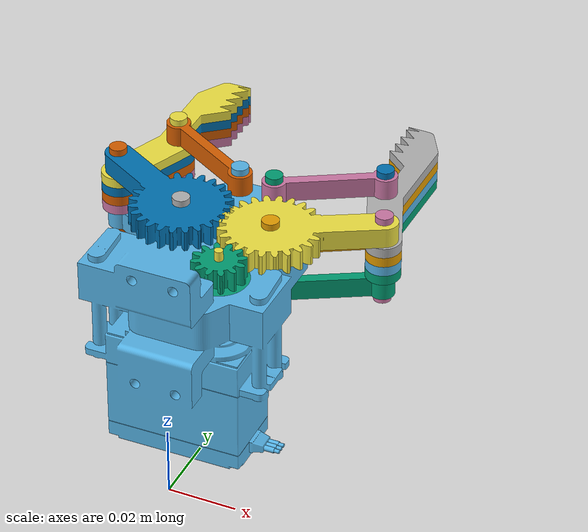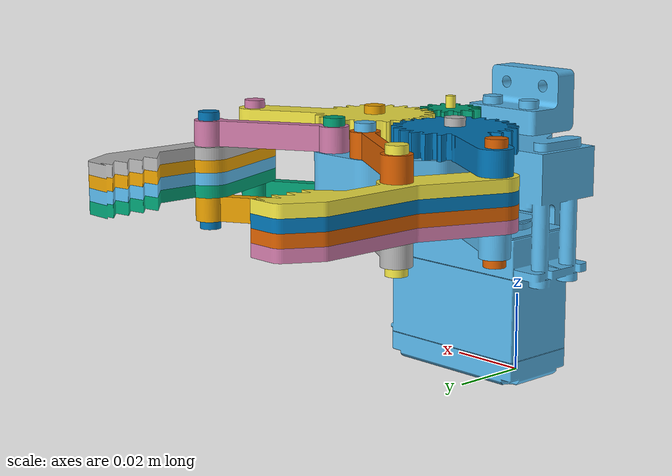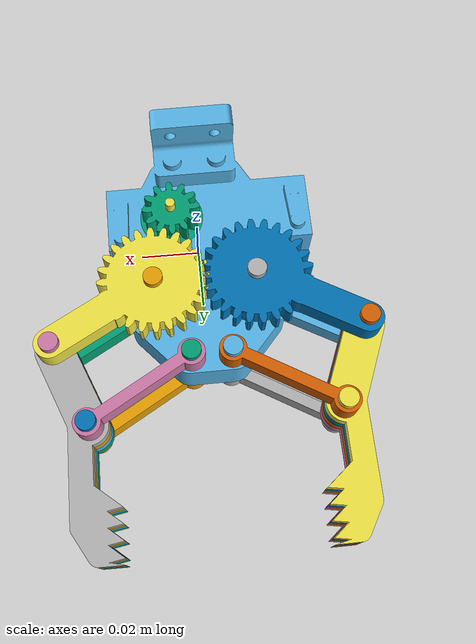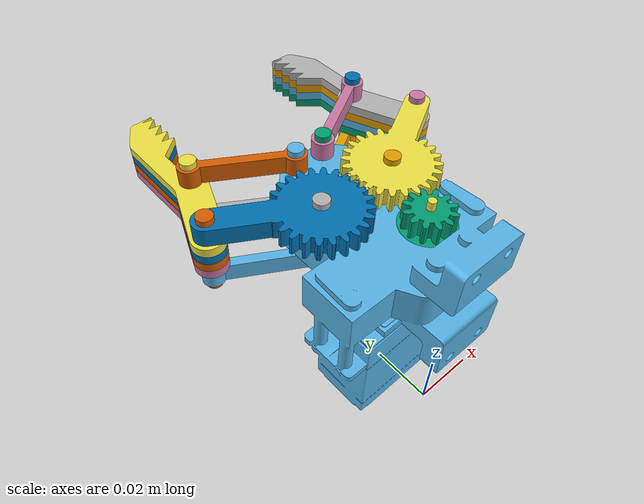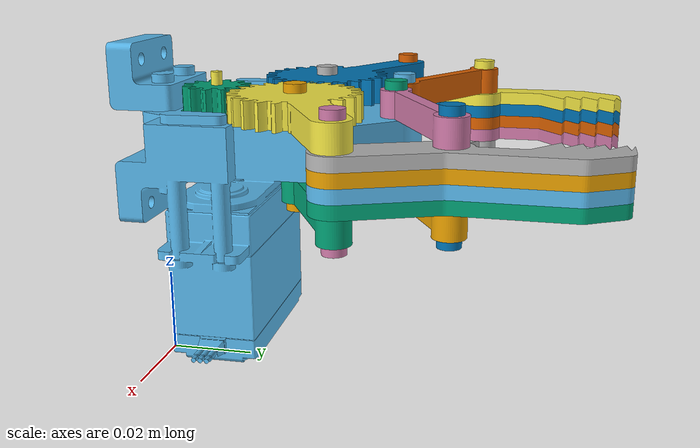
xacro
<?xml version='1.0'?>

<robot name = "swatchtha_bot" xmlns:xacro="http://www.ros.org/wiki/xacro">
    <link name= "dummy">
    </link>

    <link name = "base_link">

        <visual>
            <origin xyz = "0 0 0" rpy = "0 0 0"/>
            <geometry>
                <mesh filename="package://vehicle_environment/meshes/base_link.stl" scale="0.001 0.001 0.001"/>
            </geometry>
        </visual>

        <collision>
            <origin xyz = "0 0 0" rpy = "0 0 0"/>
            <geometry>
                <mesh filename="package://vehicle_environment/meshes/base_link.stl" scale="0.001 0.001 0.001"/>
            </geometry>
        </collision>

        <inertial>
            <mass value = "0.27869"/>
            <origin xyz = "0 0 0" rpy = "0 0 0"/>
            <inertia ixx="0.0004443" ixy = "-0.000020" ixz = "-0.000010"
                     iyy = "0.0001570" iyz = "-0.0001510" izz = "0.000370"/>
        </inertial>
    </link>

    <joint name='dummy_joint' type="fixed">
        <parent link= "dummy"/>
        <child link= "base_link"/>
        <origin xyz = "0 0 0.06" rpy = "1.57 0 0"/>
    </joint>

    <link name = "spur">

        <visual>
            <origin xyz = "0 0 0" rpy = "0 0 0"/>
            <geometry>
                <mesh filename="package://vehicle_environment/meshes/spur_gear.stl" scale="0.001 0.001 0.001"/>
            </geometry>
        </visual>

        <collision>
            <origin xyz = "0 0 0" rpy = "0 0 0"/>
            <geometry>
                <mesh filename="package://vehicle_environment/meshes/spur_gear.stl" scale="0.001 0.001 0.001"/>
            </geometry>
        </collision>

        <inertial>
            <mass value = "0.0019"/>
            <origin xyz = "0 0 0" rpy = "0 0 0"/>
            <inertia ixx="0.00" ixy = "0" ixz = "0"
                     iyy = "0.0" iyz = "0" izz = "0.0"/>
        </inertial>
    </link>

    <joint name='base_to_spur' type="continuous">
        <parent link= "base_link"/>
        <child link= "spur"/>
        <origin xyz = "0.0075 0.012 -0.0176" rpy = "1.57 0 0"/>
        <axis xyz = "0 0 1"/>
    </joint>

    <xacro:macro name = "spur_gear" params = "*origin child">

        <link name = "${child}">

            <visual>
                <origin xyz = "0 0 0" rpy = "0 0 0"/>
                <geometry>
                    <mesh filename="package://vehicle_environment/meshes/right_spur_gear.stl" scale="0.001 0.001 0.001"/>
                </geometry>
            </visual>

            <collision>
                <origin xyz = "0 0 0" rpy = "0 0 0"/>
                <geometry>
                    <mesh filename="package://vehicle_environment/meshes/right_spur_gear.stl" scale="0.001 0.001 0.001"/>
                </geometry>
            </collision>

            <inertial>
                <mass value = "0.0045"/>
                <origin xyz = "0 0 0" rpy = "0 0 0"/>
                <inertia ixx="0.000000810" ixy = "0" ixz = "0"
                     iyy = "0.0" iyz = "0" izz = "0.000000223"/>
            </inertial>
        </link>

        <joint name='spur_to_${child}' type="continuous">
            <parent link= "base_link"/>
            <child link= "${child}"/>
            <xacro:insert_block name="origin"/>

            <axis xyz = "0 1 0"/>
        </joint>

    </xacro:macro>

    <xacro:spur_gear child = "right_spur">
        <origin xyz = "0.0135 0.003 -0.0376" rpy = "0 -1.06 0"/>
    </xacro:spur_gear>

    <xacro:spur_gear child = "left_spur">
        <origin xyz = "-0.0135 0.003 -0.0376" rpy = "0 1.06 0"/>
    </xacro:spur_gear>

    <xacro:macro name = "connecting_rod" params = "*origin parent child">

        <link name = "${child}">

            <visual>
                <origin xyz = "0 0 0" rpy = "0 0 0"/>
                <geometry>
                    <mesh filename="package://vehicle_environment/meshes/connecting_rod.stl" scale="0.001 0.001 0.001"/>
                </geometry>
            </visual>

            <collision>
                <origin xyz = "0 0 0" rpy = "0 0 0"/>
                <geometry>
                    <mesh filename="package://vehicle_environment/meshes/connecting_rod.stl" scale="0.001 0.001 0.001"/>
                </geometry>
            </collision>

            <inertial>
                <mass value = "0.0082"/>
                <origin xyz = "0 0 0" rpy = "0 0 0"/>
                <inertia ixx="0.0090" ixy = "0" ixz = "0"
                     iyy = "0.000000328" iyz = "0" izz = "0.000000337"/>
            </inertial>
        </link>

        <joint name='${parent}_to_${child}' type="continuous">
            <parent link= "${parent}"/>
            <child link= "${child}"/>
            <xacro:insert_block name = "origin"/>
            <origin xyz = "-0.00524 0.003 -0.058" rpy = "0 2.60917 0"/>
            <axis xyz = "0 1 0"/>
        </joint>
    </xacro:macro>

    <xacro:connecting_rod parent = "base_link" child = "left_connecting_rod">
        <origin xyz = "-0.00524 0.003 -0.058" rpy = "0 2.60917 0"/>
    </xacro:connecting_rod>

    <xacro:connecting_rod parent = "base_link" child = "right_connecting_rod">
        <origin xyz = "0.00524 0.003 -0.058" rpy = "0 0.52358 0"/>
    </xacro:connecting_rod>

    <xacro:connecting_rod parent = "left_connecting_rod" child = "left_connecting_rod_2">
        <origin xyz = "0.00 -0.018 0.0" rpy = "0 0 0"/>
    </xacro:connecting_rod>

    <xacro:connecting_rod parent = "right_connecting_rod" child = "right_connecting_rod_2">
        <origin xyz = "0.00 -0.018 0.0" rpy = "0 0 0"/>
    </xacro:connecting_rod>

    <xacro:connecting_rod parent = "left_spur" child = "left_gear_connecting_rod">
        <origin xyz = "0.00 -0.018 0.0" rpy = "0 1.57 0"/>
    </xacro:connecting_rod>

    <xacro:connecting_rod parent = "right_spur" child = "right_gear_connecting_rod">
        <origin xyz = "0.00 -0.018 0.0" rpy = "0 1.57 0"/>
    </xacro:connecting_rod>

    <xacro:macro name="teeth" params="*origin parent child type:=fixed">
        <link name = "${child}">

            <visual>
                <origin xyz = "0 0 0" rpy = "0 0 0"/>
                <geometry>
                    <mesh filename="package://vehicle_environment/meshes/gripper_teeth.stl" scale="0.001 0.001 0.001"/>
                </geometry>
            </visual>

            <collision>
                <origin xyz = "0 0 0" rpy = "0 0 0"/>
                <geometry>
                    <mesh filename="package://vehicle_environment/meshes/gripper_teeth.stl" scale="0.001 0.001 0.001"/>
                </geometry>
            </collision>

            <inertial>
                <mass value = "0.001692"/>
                <origin xyz = "0 0 0" rpy = "0 0 0"/>
                <inertia ixx="0.0090" ixy = "0" ixz = "0"
                     iyy = "0.000001582" iyz = "0" izz = "0.000001523"/>
            </inertial>
        </link>

        <joint name='${parent}_to_${child}' type="${type}">
            <parent link= "${parent}"/>
            <child link= "${child}"/>
            <xacro:insert_block name="origin"/>
            <axis xyz = "0 1 0"/>
        </joint>
    </xacro:macro>

    <xacro:teeth parent="left_spur" child="left_teeth_1" type="continuous">
        <origin xyz = "0.0 0.0 -0.031" rpy = "3.1415 0.1305 0"/>
    </xacro:teeth>

    <xacro:teeth parent="left_teeth_1" child="left_teeth_2">
        <origin xyz = "0.0 0.003 -0.0" rpy = "0 0 0"/>
    </xacro:teeth>

    <xacro:teeth parent="left_teeth_2" child="left_teeth_3">
        <origin xyz = "0.0 0.003 -0.0" rpy = "0 0 0"/>
    </xacro:teeth>

    <xacro:teeth parent="left_teeth_3" child="left_teeth_4">
        <origin xyz = "0.0 0.003 -0.0" rpy = "0 0 0"/>
    </xacro:teeth>

    <xacro:teeth parent="right_spur" child="right_teeth_1" type="continuous">
        <origin xyz = "0.0 -0.003 -0.031" rpy = "3.1415 0.1305 3.1415"/>
    </xacro:teeth>

    <xacro:teeth parent="right_teeth_1" child="right_teeth_2">
        <origin xyz = "0.0 -0.003 -0.0" rpy = "0 0 0"/>
    </xacro:teeth>

    <xacro:teeth parent="right_teeth_2" child="right_teeth_3">
        <origin xyz = "0.0 -0.003 -0.0" rpy = "0 0 0"/>
    </xacro:teeth>

    <xacro:teeth parent="right_teeth_3" child="right_teeth_4">
        <origin xyz = "0.0 -0.003 -0.0" rpy = "0 0 0"/>
    </xacro:teeth>

    <xacro:macro name="punch" params="*origin parent child">

        <link name = "${child}">

            <visual>
                <origin xyz = "0 0 0" rpy = "0 0 0"/>
                <geometry>
                    <mesh filename="package://vehicle_environment/meshes/punch.stl" scale="0.001 0.001 0.001"/>
                </geometry>
            </visual>

            <collision>
                <origin xyz = "0 0 0" rpy = "0 0 0"/>
                <geometry>
                    <mesh filename="package://vehicle_environment/meshes/punch.stl" scale="0.001 0.001 0.001"/>
                </geometry>
            </collision>

            <inertial>
                <mass value = "0.0002"/>
                <origin xyz = "0 0 0" rpy = "0 0 0"/>
                <inertia ixx="0.000" ixy = "0" ixz = "0"
                     iyy = "0.00" iyz = "0" izz = "0.00"/>
            </inertial>
        </link>

        <joint name='${parent}_to_${child}' type="fixed">
            <parent link= "${parent}"/>
            <child link= "${child}"/>
            <xacro:insert_block name="origin"/>
        </joint>
    </xacro:macro>

    <xacro:punch parent="left_connecting_rod" child="left_punch">
        <origin xyz = "0.031 0.006 -0.0" rpy = "-1.57 0 0"/>
    </xacro:punch>

    <xacro:punch parent="right_connecting_rod" child="right_punch">
        <origin xyz = "0.031 0.006 -0.0" rpy = "-1.57 0 0"/>
    </xacro:punch>

    <xacro:punch parent="left_spur" child="left_punch_gear">
        <origin xyz = "0.0 0.006 -0.031" rpy = "-1.57 0 0"/>
    </xacro:punch>

    <xacro:punch parent="right_spur" child="right_punch_gear">
        <origin xyz = "0.0 0.006 -0.031" rpy = "-1.57 0 0"/>
    </xacro:punch>

    <xacro:punch parent="base_link" child="left_spur_punch">
        <origin xyz = "-0.0135 0.009 -0.0376" rpy = "0 1.57 1.57"/>
    </xacro:punch>

    <xacro:punch parent="base_link" child="right_spur_punch">
        <origin xyz = "0.0135 0.009 -0.0376" rpy = "0 1.57 1.57"/>
    </xacro:punch>

    <xacro:punch parent="base_link" child="left_connector_punch">
        <origin xyz = "-0.00524 0.009 -0.058" rpy = "0 1.57 1.57"/>
    </xacro:punch>

    <xacro:punch parent="base_link" child="right_connector_punch">
        <origin xyz = "0.00524 0.009 -0.058" rpy = "0 1.57 1.57"/>
    </xacro:punch>

    <link name = "spur_punch">

        <visual>
            <origin xyz = "0 0 0" rpy = "0 0 0"/>
            <geometry>
                <mesh filename="package://vehicle_environment/meshes/spur_punch.stl" scale="0.001 0.001 0.001"/>
            </geometry>
        </visual>

        <collision>
            <origin xyz = "0 0 0" rpy = "0 0 0"/>
            <geometry>
                <mesh filename="package://vehicle_environment/meshes/spur_punch.stl" scale="0.001 0.001 0.001"/>
            </geometry>
        </collision>

        <inertial>
            <mass value = "0.000156"/>
            <origin xyz = "0 0 0" rpy = "0 0 0"/>
            <inertia ixx="0.0090" ixy = "0" ixz = "0"
                     iyy = "0.0011" iyz = "0" izz = "0.0014"/>
        </inertial>
    </link>

    <joint name='spur_to_punch' type="fixed">
        <parent link= "base_link"/>
        <child link= "spur_punch"/>
        <origin xyz = "0.0075 0.012 -0.0176" rpy = "1.57 0 0"/>
    </joint>

    <transmission name="transmission_joint_1">
        <type>transmission_interface/SimpleTransmission</type>
        <actuator name="stepper_motor">
            <mechanicalReduction>1</mechanicalReduction>
        </actuator>
        <joint name="base_to_spur">
            <hardwareInterface>hardware_interface/VelocityJointInterface</hardwareInterface>
        </joint>
    </transmission>

    <gazebo>
        <plugin name="gazebo_ros_control" filename="libgazebo_ros_control.so">
        </plugin>
    </gazebo>

     <gazebo reference="right_spur">
        <selfCollide>true</selfCollide>
    </gazebo>
    <gazebo reference="left_spur">
        <selfCollide>true</selfCollide>
    </gazebo>
    <gazebo reference="base_link">
        <selfCollide>true</selfCollide>
    </gazebo>
    <gazebo reference="right_punch">
        <selfCollide>true</selfCollide>
    </gazebo>
    <gazebo reference="left_punch">
        <selfCollide>true</selfCollide>
    </gazebo>
    <gazebo reference="right_teeth_1">
        <selfCollide>true</selfCollide>
    </gazebo>
    <gazebo reference="left_teeth_1">
        <selfCollide>true</selfCollide>
    </gazebo>
    <gazebo reference="right_connecting_rod_2">
        <selfCollide>true</selfCollide>
    </gazebo>
    <gazebo reference="left_connecting_rod_2">
        <selfCollide>true</selfCollide>
    </gazebo>
    <gazebo reference="right_connector_punch">
        <selfCollide>true</selfCollide>
    </gazebo>
    <gazebo reference="left_connector_punch">
        <selfCollide>true</selfCollide>
    </gazebo>
    <gazebo reference="right_spur_punch">
        <selfCollide>true</selfCollide>
    </gazebo>
    <gazebo reference="left_spur_punch">
        <selfCollide>true</selfCollide>
    </gazebo>
    <gazebo reference="spur_punch">
        <selfCollide>true</selfCollide>
    </gazebo>
    <gazebo reference="spur">
        <selfCollide>true</selfCollide>
    </gazebo>

</robot>
